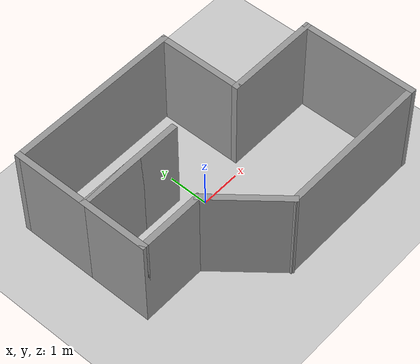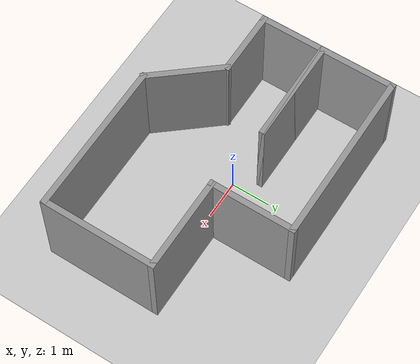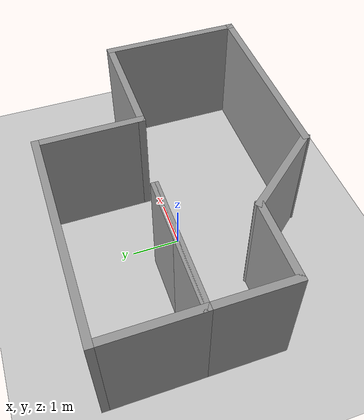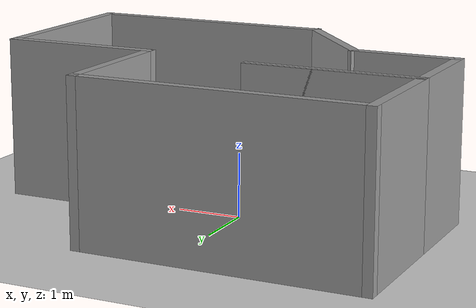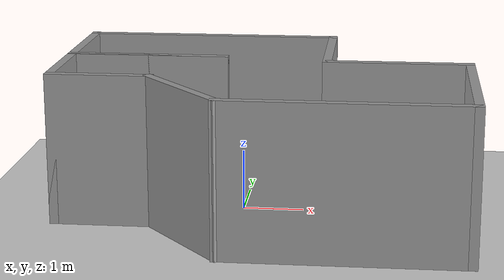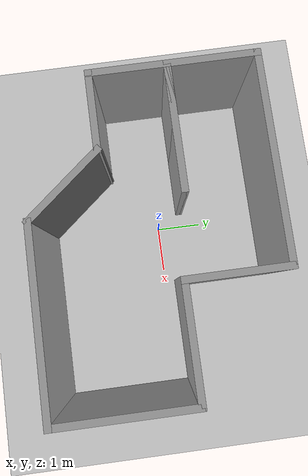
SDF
<sdf version="1.7">
 <world name="default">
  <light name="sun" type="directional">
   <cast_shadows>0</cast_shadows>
   <pose>0 0 10 0 -0 0</pose>
   <diffuse>0.8 0.8 0.8 1</diffuse>
   <specular>0.2 0.2 0.2 1</specular>
   <attenuation>
    <range>1000</range>
    <constant>0.9</constant>
    <linear>0.01</linear>
    <quadratic>0.001</quadratic>
   </attenuation>
   <direction>-0.5 0.1 -0.9</direction>
   <spot><inner_angle>0</inner_angle><outer_angle>0</outer_angle><falloff>0</falloff></spot>
  </light>
  <model name="ground_plane">
   <static>1</static>
   <link name="link">
    <collision name="collision">
     <geometry><plane><normal>0 0 1</normal><size>100 100</size></plane></geometry>
     <surface><friction><ode><mu>100</mu><mu2>50</mu2></ode></friction></surface>
    </collision>
    <visual name="visual">
     <cast_shadows>0</cast_shadows>
     <geometry><plane><normal>0 0 1</normal><size>100 100</size></plane></geometry>
     <material>
      <script><uri>file://media/materials/scripts/gazebo.material</uri><name>Gazebo/Grey</name></script>
     </material>
    </visual>
   </link>
  </model>
  <gravity>0 0 -9.8</gravity>
  <magnetic_field>6e-06 2.3e-05 -4.2e-05</magnetic_field>
  <atmosphere type="adiabatic"/>
  <physics type="ode">
   <max_step_size>0.001</max_step_size>
   <real_time_factor>1</real_time_factor>
   <real_time_update_rate>1000</real_time_update_rate>
  </physics>
  <scene><ambient>0.4 0.4 0.4 1</ambient><background>0.7 0.7 0.7 1</background><shadows>0</shadows></scene>
  <audio><device>default</device></audio>
  <spherical_coordinates>
   <surface_model>EARTH_WGS84</surface_model>
   <latitude_deg>0</latitude_deg>
   <longitude_deg>0</longitude_deg>
   <elevation>0</elevation>
   <heading_deg>0</heading_deg>
  </spherical_coordinates>
  <model name="my_world">
   <pose>0.357428 -0.094087 0 0 -0 0</pose>
   <link name="Wall_10">
    <collision name="Wall_10_Collision">
     <geometry><box><size>2.25 0.15 2.5</size></box></geometry>
     <pose>0 0 1.25 0 -0 0</pose>
    </collision>
    <visual name="Wall_10_Visual">
     <pose>0 0 1.25 0 -0 0</pose>
     <geometry><box><size>2.25 0.15 2.5</size></box></geometry>
     <material>
      <script><uri>file://media/materials/scripts/gazebo.material</uri><name>Gazebo/Grey</name></script>
      <ambient>1 1 1 1</ambient>
     </material>
     <meta><layer>0</layer></meta>
    </visual>
    <pose>1 1.44032 0 0 -0 1.5708</pose>
   </link>
   <link name="Wall_11">
    <collision name="Wall_11_Collision">
     <geometry><box><size>4.5 0.15 2.5</size></box></geometry>
     <pose>0 0 1.25 0 -0 0</pose>
    </collision>
    <visual name="Wall_11_Visual">
     <pose>0 0 1.25 0 -0 0</pose>
     <geometry><box><size>4.5 0.15 2.5</size></box></geometry>
     <material>
      <script><uri>file://media/materials/scripts/gazebo.material</uri><name>Gazebo/Grey</name></script>
      <ambient>1 1 1 1</ambient>
     </material>
     <meta><layer>0</layer></meta>
    </visual>
    <pose>-1.175 2.49031 0 0 -0 3.14159</pose>
   </link>
   <link name="Wall_12">
    <collision name="Wall_12_Collision">
     <geometry><box><size>2 0.15 2.5</size></box></geometry>
     <pose>0 0 1.25 0 -0 0</pose>
    </collision>
    <visual name="Wall_12_Visual">
     <pose>0 0 1.25 0 -0 0</pose>
     <geometry><box><size>2 0.15 2.5</size></box></geometry>
     <material>
      <script><uri>file://media/materials/scripts/gazebo.material</uri><name>Gazebo/Grey</name></script>
      <ambient>1 1 1 1</ambient>
     </material>
     <meta><layer>0</layer></meta>
    </visual>
    <pose>-3.35 1.56532 0 0 -0 -1.5708</pose>
   </link>
   <link name="Wall_13">
    <collision name="Wall_13_Collision">
     <geometry><box><size>2.75 0.15 2.5</size></box></geometry>
     <pose>0 0 1.25 0 -0 0</pose>
    </collision>
    <visual name="Wall_13_Visual">
     <pose>0 0 1.25 0 -0 0</pose>
     <geometry><box><size>2.75 0.15 2.5</size></box></geometry>
     <material>
      <script><uri>file://media/materials/scripts/gazebo.material</uri><name>Gazebo/Grey</name></script>
      <ambient>1 1 1 1</ambient>
     </material>
     <meta><layer>0</layer></meta>
    </visual>
    <pose>-2.05 0.640315 0 0 -0 0</pose>
   </link>
   <link name="Wall_14">
    <collision name="Wall_14_Collision">
     <geometry><box><size>2.75 0.15 2.5</size></box></geometry>
     <pose>0 0 1.25 0 -0 0</pose>
    </collision>
    <visual name="Wall_14_Visual">
     <pose>0 0 1.25 0 -0 0</pose>
     <geometry><box><size>2.75 0.15 2.5</size></box></geometry>
     <material>
      <script><uri>file://media/materials/scripts/gazebo.material</uri><name>Gazebo/Grey</name></script>
      <ambient>1 1 1 1</ambient>
     </material>
     <meta><layer>0</layer></meta>
    </visual>
    <pose>-2.05 0.640315 0 0 -0 3.14159</pose>
   </link>
   <link name="Wall_15">
    <collision name="Wall_15_Collision">
     <geometry><box><size>1.75 0.15 2.5</size></box></geometry>
     <pose>0 0 1.25 0 -0 0</pose>
    </collision>
    <visual name="Wall_15_Visual">
     <pose>0 0 1.25 0 -0 0</pose>
     <geometry><box><size>1.75 0.15 2.5</size></box></geometry>
     <material>
      <script><uri>file://media/materials/scripts/gazebo.material</uri><name>Gazebo/Grey</name></script>
      <ambient>1 1 1 1</ambient>
     </material>
     <meta><layer>0</layer></meta>
    </visual>
    <pose>-3.35 -0.159685 0 0 -0 -1.5708</pose>
   </link>
   <link name="Wall_16">
    <collision name="Wall_16_Collision">
     <geometry><box><size>1.75 0.15 2.5</size></box></geometry>
     <pose>0 0 1.25 0 -0 0</pose>
    </collision>
    <visual name="Wall_16_Visual">
     <pose>0 0 1.25 0 -0 0</pose>
     <geometry><box><size>1.75 0.15 2.5</size></box></geometry>
     <material>
      <script><uri>file://media/materials/scripts/gazebo.material</uri><name>Gazebo/Grey</name></script>
      <ambient>1 1 1 1</ambient>
     </material>
     <meta><layer>0</layer></meta>
    </visual>
    <pose>-2.55 -0.959685 0 0 -0 0</pose>
   </link>
   <link name="Wall_17">
    <collision name="Wall_17_Collision">
     <geometry><box><size>2.10256 0.15 2.5</size></box></geometry>
     <pose>0 0 1.25 0 -0 0</pose>
    </collision>
    <visual name="Wall_17_Visual">
     <pose>0 0 1.25 0 -0 0</pose>
     <geometry><box><size>2.10256 0.15 2.5</size></box></geometry>
     <material>
      <script><uri>file://media/materials/scripts/gazebo.material</uri><name>Gazebo/Grey</name></script>
      <ambient>1 1 1 1</ambient>
     </material>
     <meta><layer>0</layer></meta>
    </visual>
    <pose>-1.125 -1.70968 0 0 -0 -0.876058</pose>
   </link>
   <link name="Wall_5">
    <collision name="Wall_5_Collision">
     <geometry><box><size>4 0.15 2.5</size></box></geometry>
     <pose>0 0 1.25 0 -0 0</pose>
    </collision>
    <visual name="Wall_5_Visual">
     <pose>0 0 1.25 0 -0 0</pose>
     <geometry><box><size>4 0.15 2.5</size></box></geometry>
     <material>
      <script><uri>file://media/materials/scripts/gazebo.material</uri><name>Gazebo/Grey</name></script>
      <ambient>1 1 1 1</ambient>
     </material>
     <meta><layer>0</layer></meta>
    </visual>
    <pose>1.425 -2.45968 0 0 -0 0</pose>
   </link>
   <link name="Wall_8">
    <collision name="Wall_8_Collision">
     <geometry><box><size>3 0.15 2.5</size></box></geometry>
     <pose>0 0 1.25 0 -0 0</pose>
    </collision>
    <visual name="Wall_8_Visual">
     <pose>0 0 1.25 0 -0 0</pose>
     <geometry><box><size>3 0.15 2.5</size></box></geometry>
     <material>
      <script><uri>file://media/materials/scripts/gazebo.material</uri><name>Gazebo/Grey</name></script>
      <ambient>1 1 1 1</ambient>
     </material>
     <meta><layer>0</layer></meta>
    </visual>
    <pose>3.35 -1.03469 0 0 -0 1.5708</pose>
   </link>
   <link name="Wall_9">
    <collision name="Wall_9_Collision">
     <geometry><box><size>2.5 0.15 2.5</size></box></geometry>
     <pose>0 0 1.25 0 -0 0</pose>
    </collision>
    <visual name="Wall_9_Visual">
     <pose>0 0 1.25 0 -0 0</pose>
     <geometry><box><size>2.5 0.15 2.5</size></box></geometry>
     <material>
      <script><uri>file://media/materials/scripts/gazebo.material</uri><name>Gazebo/Grey</name></script>
      <ambient>1 1 1 1</ambient>
     </material>
     <meta><layer>0</layer></meta>
    </visual>
    <pose>2.175 0.390315 0 0 -0 3.14159</pose>
   </link>
   <static>1</static>
  </model>
 </world>
</sdf>
